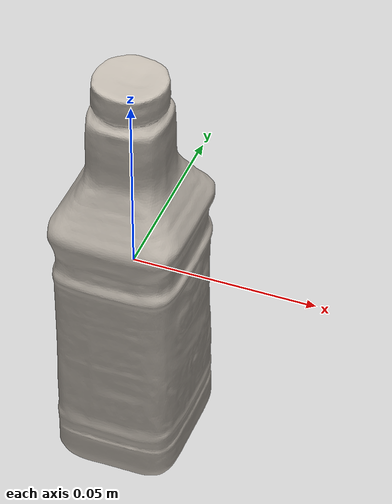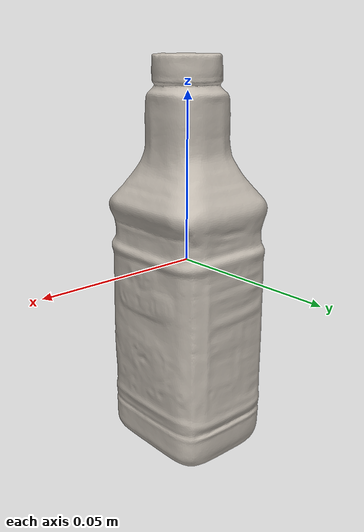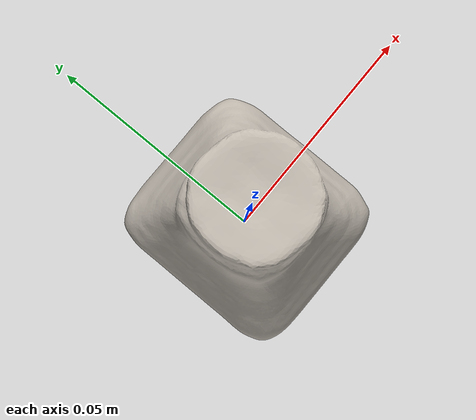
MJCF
<?xml version='1.0' encoding='utf-8'?>
<mujoco model="canola_oil_3">
  <asset>
    <texture file="ceramic.png" name="tex-canola_oil_3" type="2d" />
    <material name="canola_oil_3" reflectance="0.5" texrepeat="1 1" texture="tex-canola_oil_3" texuniform="false" />
    <mesh file="visual/model_normalized_0.obj" name="model_normalized_0_vis" scale="0.12000000000000002 0.12000000000000002 0.12000000000000002" refquat="1.0 0.0 0.0 0.0" />
    <mesh file="collision/model_normalized_collision_13.obj" name="model_normalized_collision_13._coll" scale="0.12000000000000002 0.12000000000000002 0.12000000000000002" refquat="1.0 0.0 0.0 0.0" />
    <mesh file="collision/model_normalized_collision_15.obj" name="model_normalized_collision_15._coll" scale="0.12000000000000002 0.12000000000000002 0.12000000000000002" refquat="1.0 0.0 0.0 0.0" />
    <mesh file="collision/model_normalized_collision_10.obj" name="model_normalized_collision_10._coll" scale="0.12000000000000002 0.12000000000000002 0.12000000000000002" refquat="1.0 0.0 0.0 0.0" />
    <mesh file="collision/model_normalized_collision_26.obj" name="model_normalized_collision_26._coll" scale="0.12000000000000002 0.12000000000000002 0.12000000000000002" refquat="1.0 0.0 0.0 0.0" />
    <mesh file="collision/model_normalized_collision_25.obj" name="model_normalized_collision_25._coll" scale="0.12000000000000002 0.12000000000000002 0.12000000000000002" refquat="1.0 0.0 0.0 0.0" />
    <mesh file="collision/model_normalized_collision_5.obj" name="model_normalized_collision_5._coll" scale="0.12000000000000002 0.12000000000000002 0.12000000000000002" refquat="1.0 0.0 0.0 0.0" />
    <mesh file="collision/model_normalized_collision_31.obj" name="model_normalized_collision_31._coll" scale="0.12000000000000002 0.12000000000000002 0.12000000000000002" refquat="1.0 0.0 0.0 0.0" />
    <mesh file="collision/model_normalized_collision_3.obj" name="model_normalized_collision_3._coll" scale="0.12000000000000002 0.12000000000000002 0.12000000000000002" refquat="1.0 0.0 0.0 0.0" />
    <mesh file="collision/model_normalized_collision_14.obj" name="model_normalized_collision_14._coll" scale="0.12000000000000002 0.12000000000000002 0.12000000000000002" refquat="1.0 0.0 0.0 0.0" />
    <mesh file="collision/model_normalized_collision_28.obj" name="model_normalized_collision_28._coll" scale="0.12000000000000002 0.12000000000000002 0.12000000000000002" refquat="1.0 0.0 0.0 0.0" />
    <mesh file="collision/model_normalized_collision_11.obj" name="model_normalized_collision_11._coll" scale="0.12000000000000002 0.12000000000000002 0.12000000000000002" refquat="1.0 0.0 0.0 0.0" />
    <mesh file="collision/model_normalized_collision_29.obj" name="model_normalized_collision_29._coll" scale="0.12000000000000002 0.12000000000000002 0.12000000000000002" refquat="1.0 0.0 0.0 0.0" />
    <mesh file="collision/model_normalized_collision_24.obj" name="model_normalized_collision_24._coll" scale="0.12000000000000002 0.12000000000000002 0.12000000000000002" refquat="1.0 0.0 0.0 0.0" />
    <mesh file="collision/model_normalized_collision_1.obj" name="model_normalized_collision_1._coll" scale="0.12000000000000002 0.12000000000000002 0.12000000000000002" refquat="1.0 0.0 0.0 0.0" />
    <mesh file="collision/model_normalized_collision_0.obj" name="model_normalized_collision_0._coll" scale="0.12000000000000002 0.12000000000000002 0.12000000000000002" refquat="1.0 0.0 0.0 0.0" />
    <mesh file="collision/model_normalized_collision_27.obj" name="model_normalized_collision_27._coll" scale="0.12000000000000002 0.12000000000000002 0.12000000000000002" refquat="1.0 0.0 0.0 0.0" />
    <mesh file="collision/model_normalized_collision_9.obj" name="model_normalized_collision_9._coll" scale="0.12000000000000002 0.12000000000000002 0.12000000000000002" refquat="1.0 0.0 0.0 0.0" />
    <mesh file="collision/model_normalized_collision_19.obj" name="model_normalized_collision_19._coll" scale="0.12000000000000002 0.12000000000000002 0.12000000000000002" refquat="1.0 0.0 0.0 0.0" />
    <mesh file="collision/model_normalized_collision_21.obj" name="model_normalized_collision_21._coll" scale="0.12000000000000002 0.12000000000000002 0.12000000000000002" refquat="1.0 0.0 0.0 0.0" />
    <mesh file="collision/model_normalized_collision_30.obj" name="model_normalized_collision_30._coll" scale="0.12000000000000002 0.12000000000000002 0.12000000000000002" refquat="1.0 0.0 0.0 0.0" />
    <mesh file="collision/model_normalized_collision_20.obj" name="model_normalized_collision_20._coll" scale="0.12000000000000002 0.12000000000000002 0.12000000000000002" refquat="1.0 0.0 0.0 0.0" />
    <mesh file="collision/model_normalized_collision_2.obj" name="model_normalized_collision_2._coll" scale="0.12000000000000002 0.12000000000000002 0.12000000000000002" refquat="1.0 0.0 0.0 0.0" />
    <mesh file="collision/model_normalized_collision_7.obj" name="model_normalized_collision_7._coll" scale="0.12000000000000002 0.12000000000000002 0.12000000000000002" refquat="1.0 0.0 0.0 0.0" />
    <mesh file="collision/model_normalized_collision_22.obj" name="model_normalized_collision_22._coll" scale="0.12000000000000002 0.12000000000000002 0.12000000000000002" refquat="1.0 0.0 0.0 0.0" />
    <mesh file="collision/model_normalized_collision_16.obj" name="model_normalized_collision_16._coll" scale="0.12000000000000002 0.12000000000000002 0.12000000000000002" refquat="1.0 0.0 0.0 0.0" />
    <mesh file="collision/model_normalized_collision_8.obj" name="model_normalized_collision_8._coll" scale="0.12000000000000002 0.12000000000000002 0.12000000000000002" refquat="1.0 0.0 0.0 0.0" />
    <mesh file="collision/model_normalized_collision_6.obj" name="model_normalized_collision_6._coll" scale="0.12000000000000002 0.12000000000000002 0.12000000000000002" refquat="1.0 0.0 0.0 0.0" />
    <mesh file="collision/model_normalized_collision_18.obj" name="model_normalized_collision_18._coll" scale="0.12000000000000002 0.12000000000000002 0.12000000000000002" refquat="1.0 0.0 0.0 0.0" />
    <mesh file="collision/model_normalized_collision_17.obj" name="model_normalized_collision_17._coll" scale="0.12000000000000002 0.12000000000000002 0.12000000000000002" refquat="1.0 0.0 0.0 0.0" />
    <mesh file="collision/model_normalized_collision_12.obj" name="model_normalized_collision_12._coll" scale="0.12000000000000002 0.12000000000000002 0.12000000000000002" refquat="1.0 0.0 0.0 0.0" />
    <mesh file="collision/model_normalized_collision_4.obj" name="model_normalized_collision_4._coll" scale="0.12000000000000002 0.12000000000000002 0.12000000000000002" refquat="1.0 0.0 0.0 0.0" />
    <mesh file="collision/model_normalized_collision_23.obj" name="model_normalized_collision_23._coll" scale="0.12000000000000002 0.12000000000000002 0.12000000000000002" refquat="1.0 0.0 0.0 0.0" />
    <texture type="2d" name="6c600d3e89d7_canola_oil__3d_asse_texture_kd" file="visual/6c600d3e89d7_canola_oil__3d_asse_texture_kd.png" />
    <material name="Material_0" texture="6c600d3e89d7_canola_oil__3d_asse_texture_kd" specular="0.5" shininess="0.5" />
  </asset>
  <default>
    <default class="region">
      <geom group="1" conaffinity="0" contype="0" rgba="0 1 0 0" />
    </default>
  </default>
  <worldbody>
    <body>
      <body name="object">
        <geom solimp="0.998 0.998 0.001" solref="0.001 1" density="100" friction="0.95 0.3 0.1" type="mesh" mesh="model_normalized_0_vis" conaffinity="0" contype="0" group="1" material="Material_0" />
        <geom solimp="0.998 0.998 0.001" solref="0.001 1" density="100" friction="0.95 0.3 0.1" type="mesh" mesh="model_normalized_collision_13._coll" group="0" rgba="0.8 0.8 0.8 0.0" />
        <geom solimp="0.998 0.998 0.001" solref="0.001 1" density="100" friction="0.95 0.3 0.1" type="mesh" mesh="model_normalized_collision_15._coll" group="0" rgba="0.8 0.8 0.8 0.0" />
        <geom solimp="0.998 0.998 0.001" solref="0.001 1" density="100" friction="0.95 0.3 0.1" type="mesh" mesh="model_normalized_collision_10._coll" group="0" rgba="0.8 0.8 0.8 0.0" />
        <geom solimp="0.998 0.998 0.001" solref="0.001 1" density="100" friction="0.95 0.3 0.1" type="mesh" mesh="model_normalized_collision_26._coll" group="0" rgba="0.8 0.8 0.8 0.0" />
        <geom solimp="0.998 0.998 0.001" solref="0.001 1" density="100" friction="0.95 0.3 0.1" type="mesh" mesh="model_normalized_collision_25._coll" group="0" rgba="0.8 0.8 0.8 0.0" />
        <geom solimp="0.998 0.998 0.001" solref="0.001 1" density="100" friction="0.95 0.3 0.1" type="mesh" mesh="model_normalized_collision_5._coll" group="0" rgba="0.8 0.8 0.8 0.0" />
        <geom solimp="0.998 0.998 0.001" solref="0.001 1" density="100" friction="0.95 0.3 0.1" type="mesh" mesh="model_normalized_collision_31._coll" group="0" rgba="0.8 0.8 0.8 0.0" />
        <geom solimp="0.998 0.998 0.001" solref="0.001 1" density="100" friction="0.95 0.3 0.1" type="mesh" mesh="model_normalized_collision_3._coll" group="0" rgba="0.8 0.8 0.8 0.0" />
        <geom solimp="0.998 0.998 0.001" solref="0.001 1" density="100" friction="0.95 0.3 0.1" type="mesh" mesh="model_normalized_collision_14._coll" group="0" rgba="0.8 0.8 0.8 0.0" />
        <geom solimp="0.998 0.998 0.001" solref="0.001 1" density="100" friction="0.95 0.3 0.1" type="mesh" mesh="model_normalized_collision_28._coll" group="0" rgba="0.8 0.8 0.8 0.0" />
        <geom solimp="0.998 0.998 0.001" solref="0.001 1" density="100" friction="0.95 0.3 0.1" type="mesh" mesh="model_normalized_collision_11._coll" group="0" rgba="0.8 0.8 0.8 0.0" />
        <geom solimp="0.998 0.998 0.001" solref="0.001 1" density="100" friction="0.95 0.3 0.1" type="mesh" mesh="model_normalized_collision_29._coll" group="0" rgba="0.8 0.8 0.8 0.0" />
        <geom solimp="0.998 0.998 0.001" solref="0.001 1" density="100" friction="0.95 0.3 0.1" type="mesh" mesh="model_normalized_collision_24._coll" group="0" rgba="0.8 0.8 0.8 0.0" />
        <geom solimp="0.998 0.998 0.001" solref="0.001 1" density="100" friction="0.95 0.3 0.1" type="mesh" mesh="model_normalized_collision_1._coll" group="0" rgba="0.8 0.8 0.8 0.0" />
        <geom solimp="0.998 0.998 0.001" solref="0.001 1" density="100" friction="0.95 0.3 0.1" type="mesh" mesh="model_normalized_collision_0._coll" group="0" rgba="0.8 0.8 0.8 0.0" />
        <geom solimp="0.998 0.998 0.001" solref="0.001 1" density="100" friction="0.95 0.3 0.1" type="mesh" mesh="model_normalized_collision_27._coll" group="0" rgba="0.8 0.8 0.8 0.0" />
        <geom solimp="0.998 0.998 0.001" solref="0.001 1" density="100" friction="0.95 0.3 0.1" type="mesh" mesh="model_normalized_collision_9._coll" group="0" rgba="0.8 0.8 0.8 0.0" />
        <geom solimp="0.998 0.998 0.001" solref="0.001 1" density="100" friction="0.95 0.3 0.1" type="mesh" mesh="model_normalized_collision_19._coll" group="0" rgba="0.8 0.8 0.8 0.0" />
        <geom solimp="0.998 0.998 0.001" solref="0.001 1" density="100" friction="0.95 0.3 0.1" type="mesh" mesh="model_normalized_collision_21._coll" group="0" rgba="0.8 0.8 0.8 0.0" />
        <geom solimp="0.998 0.998 0.001" solref="0.001 1" density="100" friction="0.95 0.3 0.1" type="mesh" mesh="model_normalized_collision_30._coll" group="0" rgba="0.8 0.8 0.8 0.0" />
        <geom solimp="0.998 0.998 0.001" solref="0.001 1" density="100" friction="0.95 0.3 0.1" type="mesh" mesh="model_normalized_collision_20._coll" group="0" rgba="0.8 0.8 0.8 0.0" />
        <geom solimp="0.998 0.998 0.001" solref="0.001 1" density="100" friction="0.95 0.3 0.1" type="mesh" mesh="model_normalized_collision_2._coll" group="0" rgba="0.8 0.8 0.8 0.0" />
        <geom solimp="0.998 0.998 0.001" solref="0.001 1" density="100" friction="0.95 0.3 0.1" type="mesh" mesh="model_normalized_collision_7._coll" group="0" rgba="0.8 0.8 0.8 0.0" />
        <geom solimp="0.998 0.998 0.001" solref="0.001 1" density="100" friction="0.95 0.3 0.1" type="mesh" mesh="model_normalized_collision_22._coll" group="0" rgba="0.8 0.8 0.8 0.0" />
        <geom solimp="0.998 0.998 0.001" solref="0.001 1" density="100" friction="0.95 0.3 0.1" type="mesh" mesh="model_normalized_collision_16._coll" group="0" rgba="0.8 0.8 0.8 0.0" />
        <geom solimp="0.998 0.998 0.001" solref="0.001 1" density="100" friction="0.95 0.3 0.1" type="mesh" mesh="model_normalized_collision_8._coll" group="0" rgba="0.8 0.8 0.8 0.0" />
        <geom solimp="0.998 0.998 0.001" solref="0.001 1" density="100" friction="0.95 0.3 0.1" type="mesh" mesh="model_normalized_collision_6._coll" group="0" rgba="0.8 0.8 0.8 0.0" />
        <geom solimp="0.998 0.998 0.001" solref="0.001 1" density="100" friction="0.95 0.3 0.1" type="mesh" mesh="model_normalized_collision_18._coll" group="0" rgba="0.8 0.8 0.8 0.0" />
        <geom solimp="0.998 0.998 0.001" solref="0.001 1" density="100" friction="0.95 0.3 0.1" type="mesh" mesh="model_normalized_collision_17._coll" group="0" rgba="0.8 0.8 0.8 0.0" />
        <geom solimp="0.998 0.998 0.001" solref="0.001 1" density="100" friction="0.95 0.3 0.1" type="mesh" mesh="model_normalized_collision_12._coll" group="0" rgba="0.8 0.8 0.8 0.0" />
        <geom solimp="0.998 0.998 0.001" solref="0.001 1" density="100" friction="0.95 0.3 0.1" type="mesh" mesh="model_normalized_collision_4._coll" group="0" rgba="0.8 0.8 0.8 0.0" />
        <geom solimp="0.998 0.998 0.001" solref="0.001 1" density="100" friction="0.95 0.3 0.1" type="mesh" mesh="model_normalized_collision_23._coll" group="0" rgba="0.8 0.8 0.8 0.0" />
        <geom class="region" name="reg_bbox" type="box" pos="-0.0004346531999999998 0.0003552401999999994 -5.999999941330714e-10" size="0.0177471648 0.0212643312 0.06090909060000001" />
      </body>
    <site rgba="0 0 0 0" size="0.005" pos="0 0 -0.060909091" name="bottom_site" /><site rgba="0 0 0 0" size="0.005" pos="0 0 0.06090909" name="top_site" /><site rgba="0 0 0 0" size="0.005" pos="0.021619571 0.021619571 0" name="horizontal_radius_site" /></body>
  </worldbody>
</mujoco>
